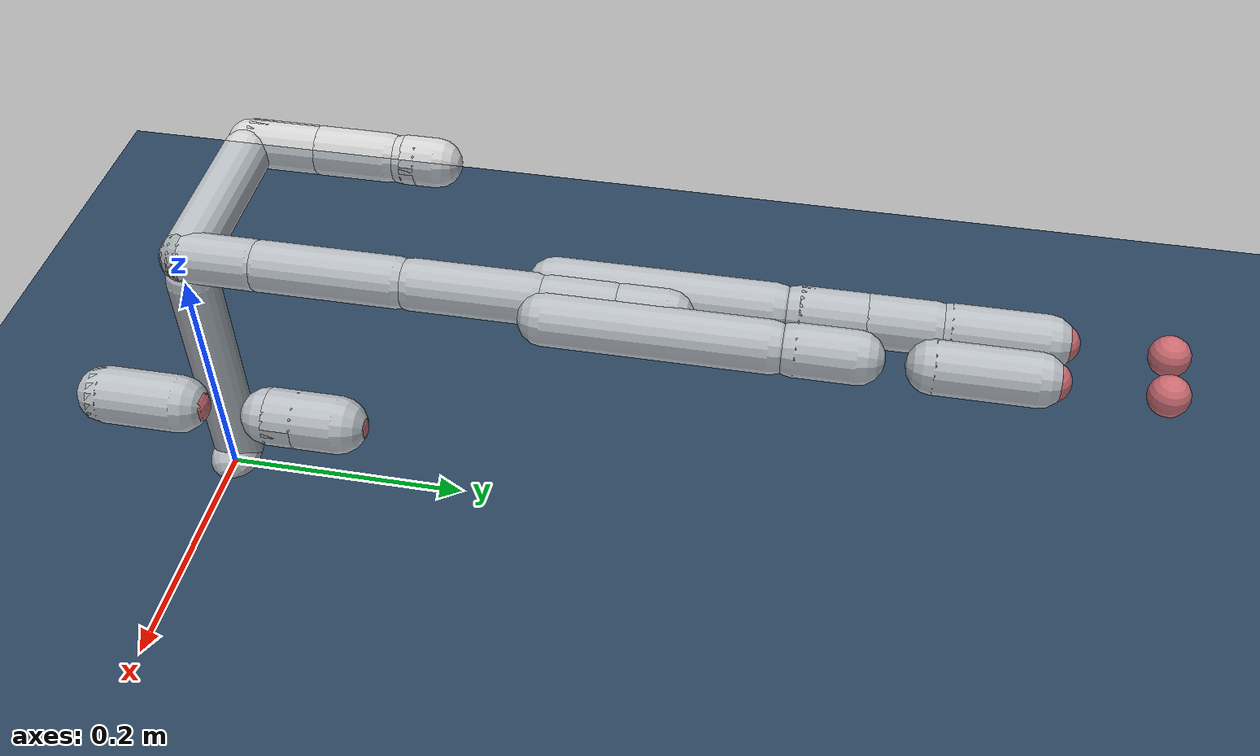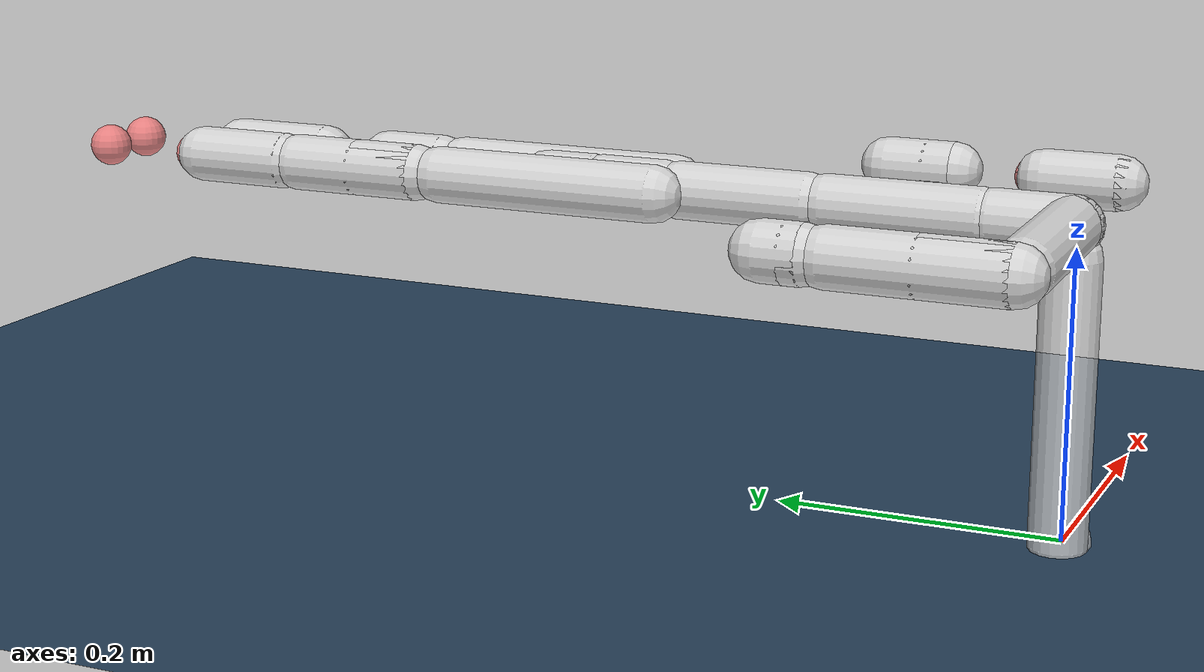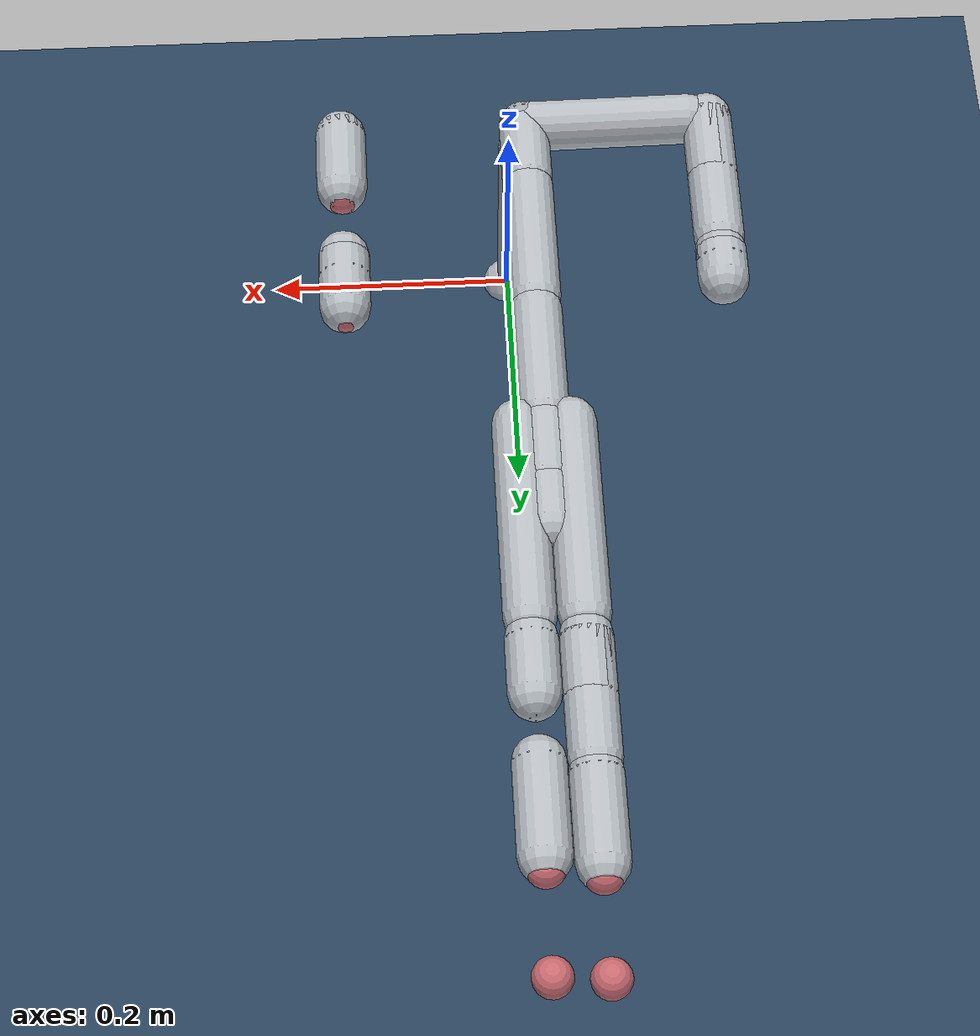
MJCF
<?xml version="1.0" ?>
<mujoco>
  <compiler angle="radian" autolimits="true"/>
  <option gravity="0 0 -9.81" timestep="0.01"/>
  <visual>
    <headlight diffuse="0.6 0.6 0.6" ambient="0.3 0.3 0.3" specular="0 0 0"/>
  </visual>
  <asset>
    <texture name="grid" type="2d" builtin="checker" width="512" height="512" rgb1="0.1 0.2 0.3" rgb2="0.2 0.3 0.4"/>
    <material name="grid" texture="grid" texrepeat="1 1" texuniform="true" reflectance="0.2"/>
  </asset>
  <worldbody>
    <geom name="floor" type="plane" size="10 10 0.1" material="grid" pos="0 0 0"/>
    <light name="spotlight" directional="true" diffuse="0.8 0.8 0.8" specular="0.2 0.2 0.2" pos="0 -2 4" dir="0 1 -1"/>
    <body name="Armature_body">
      <geom type="capsule" size="0.02" fromto="0 0 0 -0.01046572308987379 0.0 0.0010204081772826612" rgba="0.9 0.9 0.9 0.8"/>
      <joint name="Armature" type="free"/>
      <body name="Root_body" pos="-0.011628581210970879 0.0 0.0011337868636474013">
        <geom type="capsule" size="0.02" fromto="0 0 0 -3.29440594803998e-09 0.0 0.19453947991132736" rgba="0.9 0.9 0.9 0.8"/>
        <joint name="Root" type="ball"/>
        <body name="Hip_body" pos="-3.6604510533777557e-09 0.0 0.21615497767925262">
          <geom type="sphere" size="0.02" rgba="0.8 0.8 0.8 0.8"/>
          <joint name="Hip" type="ball"/>
          <body name="Pelvis_body" pos="0.0 0.001 0.0">
            <geom type="capsule" size="0.02" fromto="0 0 0 -0.13261746615171432 -0.0021376656834036114 3.5958933494839587e-06" rgba="0.9 0.9 0.9 0.8"/>
            <joint name="Pelvis" type="ball"/>
            <body name="L_Thigh_body" pos="-0.14735274016857147 -0.002375184092670679 3.995437054982176e-06">
              <geom type="capsule" size="0.02" fromto="0 0 0 -1.8044665921479464e-05 0.11752658039331436 -5.7976007610704984e-06" rgba="0.9 0.9 0.9 0.8"/>
              <joint name="L_Thigh" type="ball"/>
              <body name="L_Calf_body" pos="-2.004962880164385e-05 0.13058508932590485 -6.441778623411665e-06">
                <geom type="capsule" size="0.02" fromto="0 0 0 -1.1194031685590744e-06 0.02749726586043835 6.605425505767926e-06" rgba="0.9 0.9 0.9 0.8"/>
                <joint name="L_Calf" type="ball"/>
                <body name="L_Foot_body" pos="-1.2437812983989716e-06 0.030552517622709274 7.339361673075473e-06">
                  <geom type="sphere" size="0.015" rgba="1 0.5 0.5 0.8"/>
                  <joint name="L_Foot" type="ball"/>
                </body>
                <body name="L_CalfTwist01_body" pos="6.984919309616089e-09 -1.7860904335975647e-05 -4.069928394301314e-09">
                  <geom type="capsule" size="0.02" fromto="0 0 0 1.802109181880951e-08 0.011473905108869076 7.559863135497836e-09" rgba="0.9 0.9 0.9 0.8"/>
                  <joint name="L_CalfTwist01" type="ball"/>
                  <body name="L_CalfTwist02_body" pos="2.0023435354232788e-08 0.012748783454298973 8.399847928330928e-09">
                    <geom type="sphere" size="0.015" rgba="1 0.5 0.5 0.8"/>
                    <joint name="L_CalfTwist02" type="ball"/>
                  </body>
                </body>
              </body>
              <body name="L_ThighTwist01_body" pos="1.2863893061876297e-08 -6.528850644826889e-05 -3.4240770219184924e-09">
                <geom type="capsule" size="0.02" fromto="0 0 0 -3.9080623537302016e-08 0.05881209969520569 2.6671401087696725e-09" rgba="0.9 0.9 0.9 0.8"/>
                <joint name="L_ThighTwist01" type="ball"/>
                <body name="L_ThighTwist02_body" pos="-4.3422915041446686e-08 0.06534677743911743 2.9634890097440802e-09">
                  <geom type="sphere" size="0.015" rgba="1 0.5 0.5 0.8"/>
                  <joint name="L_ThighTwist02" type="ball"/>
                </body>
              </body>
            </body>
            <body name="R_Thigh_body" pos="0.14735862612724304 0.002133676316589117 3.0632079869974405e-05">
              <geom type="capsule" size="0.02" fromto="0 0 0 2.514570951461792e-08 -5.317353643476963e-05 1.502141770970411e-08" rgba="0.9 0.9 0.9 0.8"/>
              <joint name="R_Thigh" type="ball"/>
              <body name="R_ThighTwist01_body" pos="2.7939677238464355e-08 -5.9081707149744034e-05 1.6690464121893456e-08">
                <geom type="capsule" size="0.02" fromto="0 0 0 -2.5983899831771853e-08 0.053145956620573996 4.527931629638715e-09" rgba="0.9 0.9 0.9 0.8"/>
                <joint name="R_ThighTwist01" type="ball"/>
                <body name="R_ThighTwist02_body" pos="-2.8870999813079834e-08 0.059051062911748886 5.031035144043017e-09">
                  <geom type="sphere" size="0.015" rgba="1 0.5 0.5 0.8"/>
                  <joint name="R_ThighTwist02" type="ball"/>
                </body>
              </body>
              <body name="R_Calf_body" pos="2.7348054572939873e-05 0.11801790446043015 3.1702700653113425e-05">
                <geom type="capsule" size="0.02" fromto="0 0 0 -2.295803278684616e-06 0.048499032855033875 1.1021376758435509e-05" rgba="0.9 0.9 0.9 0.8"/>
                <joint name="R_Calf" type="ball"/>
                <body name="R_Foot_body" pos="-2.5508925318717957e-06 0.05388781428337097 1.2245974176039454e-05">
                  <geom type="sphere" size="0.015" rgba="1 0.5 0.5 0.8"/>
                  <joint name="R_Foot" type="ball"/>
                </body>
                <body name="R_CalfTwist01_body" pos="2.514570951461792e-08 -3.1439587473869324e-05 -2.511831098672701e-08">
                  <geom type="capsule" size="0.02" fromto="0 0 0 -8.381903171539307e-10 0.020234363526105883 5.040237027742478e-09" rgba="0.9 0.9 0.9 0.8"/>
                  <joint name="R_CalfTwist01" type="ball"/>
                  <body name="R_CalfTwist02_body" pos="-9.313225746154785e-10 0.022482626140117645 5.600263364158309e-09">
                    <geom type="sphere" size="0.015" rgba="1 0.5 0.5 0.8"/>
                    <joint name="R_CalfTwist02" type="ball"/>
                  </body>
                </body>
              </body>
            </body>
          </body>
          <body name="Waist_body" pos="2.9730552341789007e-05 4.7577934310538694e-05 1.9641185645014048e-05">
            <geom type="capsule" size="0.02" fromto="0 0 0 4.1009116102941337e-10 0.053612134605646136 3.616591426336413e-09" rgba="0.9 0.9 0.9 0.8"/>
            <joint name="Waist" type="ball"/>
            <body name="Spine01_body" pos="4.5565684558823705e-10 0.059569038450717926 4.01843491815157e-09">
              <geom type="capsule" size="0.02" fromto="0 0 0 2.83331758055283e-10 0.10710367038846016 -8.343056245863068e-11" rgba="0.9 0.9 0.9 0.8"/>
              <joint name="Spine01" type="ball"/>
              <body name="Spine02_body" pos="3.1481306450587e-10 0.11900407820940018 -9.270062495403408e-11">
                <geom type="capsule" size="0.02" fromto="0 0 0 -4.3587533582467586e-10 0.09368188977241516 3.832924977409391e-10" rgba="0.9 0.9 0.9 0.8"/>
                <joint name="Spine02" type="ball"/>
                <body name="NeckTwist01_body" pos="-4.843059286940843e-10 0.10409098863601685 4.258805530454879e-10">
                  <geom type="capsule" size="0.02" fromto="0 0 0 -7.031303539406508e-10 0.04820588752627373 5.9584357448017045e-09" rgba="0.9 0.9 0.9 0.8"/>
                  <joint name="NeckTwist01" type="ball"/>
                  <body name="NeckTwist02_body" pos="-7.812559488229454e-10 0.05356209725141525 6.620484160890783e-09">
                    <geom type="capsule" size="0.02" fromto="0 0 0 -9.830728231463582e-10 0.03489932790398598 -8.268387974297297e-10" rgba="0.9 0.9 0.9 0.8"/>
                    <joint name="NeckTwist02" type="ball"/>
                    <body name="Head_body" pos="-1.0923031368292868e-09 0.038777031004428864 -9.18709774921922e-10">
                      <geom type="sphere" size="0.015" rgba="1 0.5 0.5 0.8"/>
                      <joint name="Head" type="ball"/>
                    </body>
                  </body>
                </body>
                <body name="L_Clavicle_body" pos="-0.019997674971818924 0.10373256355524063 -9.875340545306699e-10">
                  <geom type="capsule" size="0.02" fromto="0 0 0 2.745414949458791e-05 0.16416012346744538 7.584613513245132e-07" rgba="0.9 0.9 0.9 0.8"/>
                  <joint name="L_Clavicle" type="ball"/>
                  <body name="L_Upperarm_body" pos="3.050461054954212e-05 0.18240013718605042 8.427348348050145e-07">
                    <geom type="capsule" size="0.02" fromto="0 0 0 -4.837203523493372e-05 0.09770893827080727 -4.129962762817741e-05" rgba="0.9 0.9 0.9 0.8"/>
                    <joint name="L_Upperarm" type="ball"/>
                    <body name="L_Forearm_body" pos="-5.374670581659302e-05 0.10856548696756363 -4.588847514241934e-05">
                      <geom type="capsule" size="0.02" fromto="0 0 0 -1.5427940525114537e-08 -6.926689529791474e-05 -2.8433959187168513e-09" rgba="0.9 0.9 0.9 0.8"/>
                      <joint name="L_Forearm" type="ball"/>
                      <body name="L_ForearmTwist01_body" pos="-1.714215613901615e-08 -7.696321699768305e-05 -3.159328798574279e-09">
                        <geom type="capsule" size="0.02" fromto="0 0 0 3.5518314689397815e-08 0.0692701868712902 -1.7100445859341564e-08" rgba="0.9 0.9 0.9 0.8"/>
                        <joint name="L_ForearmTwist01" type="ball"/>
                        <body name="L_ForearmTwist02_body" pos="3.94647940993309e-08 0.07696687430143356 -1.9000495399268402e-08">
                          <geom type="sphere" size="0.015" rgba="1 0.5 0.5 0.8"/>
                          <joint name="L_ForearmTwist02" type="ball"/>
                        </body>
                      </body>
                      <body name="L_Hand_body" pos="4.7264620661735535e-08 0.1538105607032776 -1.4747939758308348e-08">
                        <geom type="sphere" size="0.015" rgba="1 0.5 0.5 0.8"/>
                        <joint name="L_Hand" type="ball"/>
                      </body>
                    </body>
                    <body name="L_UpperarmTwist01_body" pos="3.721197572303936e-08 -5.427160795079544e-05 2.809574795037406e-10">
                      <geom type="capsule" size="0.02" fromto="0 0 0 -3.5893208405468613e-09 0.048841752111911774 6.053397783034597e-11" rgba="0.9 0.9 0.9 0.8"/>
                      <joint name="L_UpperarmTwist01" type="ball"/>
                      <body name="L_UpperarmTwist02_body" pos="-3.98813426727429e-09 0.05426861345767975 6.725997536705108e-11">
                        <geom type="sphere" size="0.015" rgba="1 0.5 0.5 0.8"/>
                        <joint name="L_UpperarmTwist02" type="ball"/>
                      </body>
                    </body>
                  </body>
                </body>
                <body name="R_Clavicle_body" pos="0.019997669383883476 0.1043422594666481 4.632994876629937e-09">
                  <geom type="capsule" size="0.02" fromto="0 0 0 -2.652493531059008e-05 0.1646248698234558 -2.583131481515011e-06" rgba="0.9 0.9 0.9 0.8"/>
                  <joint name="R_Clavicle" type="ball"/>
                  <body name="R_Upperarm_body" pos="-2.947215034510009e-05 0.182916522026062 -2.8701460905722342e-06">
                    <geom type="capsule" size="0.02" fromto="0 0 0 2.252636477351189e-09 -4.386153013911098e-05 1.2189929066153126e-10" rgba="0.9 0.9 0.9 0.8"/>
                    <joint name="R_Upperarm" type="ball"/>
                    <body name="R_UpperarmTwist01_body" pos="2.5029294192790985e-09 -4.873503348790109e-05 1.354436562905903e-10">
                      <geom type="capsule" size="0.02" fromto="0 0 0 -1.0472795111127198e-07 0.04382737912237644 -6.518331474580918e-09" rgba="0.9 0.9 0.9 0.8"/>
                      <joint name="R_UpperarmTwist01" type="ball"/>
                      <body name="R_UpperarmTwist02_body" pos="-1.1636439012363553e-07 0.0486970879137516 -7.242590527312132e-09">
                        <geom type="sphere" size="0.015" rgba="1 0.5 0.5 0.8"/>
                        <joint name="R_UpperarmTwist02" type="ball"/>
                      </body>
                    </body>
                    <body name="R_Forearm_body" pos="5.541671998798847e-05 0.09742680191993713 -7.703141454840079e-05">
                      <geom type="capsule" size="0.02" fromto="0 0 0 1.2782402336597442e-08 -7.243473082780838e-05 -1.3311975521901331e-08" rgba="0.9 0.9 0.9 0.8"/>
                      <joint name="R_Forearm" type="ball"/>
                      <body name="R_ForearmTwist01_body" pos="1.4202669262886047e-08 -8.048303425312042e-05 -1.4791083913223702e-08">
                        <geom type="capsule" size="0.02" fromto="0 0 0 -3.5937409847974776e-08 0.07247826978564263 3.0180811450009064e-08" rgba="0.9 0.9 0.9 0.8"/>
                        <joint name="R_ForearmTwist01" type="ball"/>
                        <body name="R_ForearmTwist02_body" pos="-3.993045538663864e-08 0.08053141087293625 3.353423494445451e-08">
                          <geom type="sphere" size="0.015" rgba="1 0.5 0.5 0.8"/>
                          <joint name="R_ForearmTwist02" type="ball"/>
                        </body>
                      </body>
                      <body name="R_Hand_body" pos="7.35744833946228e-08 0.16093403100967407 -5.899210009374656e-10">
                        <geom type="sphere" size="0.015" rgba="1 0.5 0.5 0.8"/>
                        <joint name="R_Hand" type="ball"/>
                      </body>
                    </body>
                  </body>
                </body>
              </body>
            </body>
          </body>
        </body>
      </body>
    </body>
  </worldbody>
  <actuator>
    <motor name="Armature_motor" joint="Armature" gear="250" ctrllimited="true" ctrlrange="-1 1"/>
    <motor name="Head_motor" joint="Head" gear="100" ctrllimited="true" ctrlrange="-1 1"/>
    <motor name="Hip_motor" joint="Hip" gear="100" ctrllimited="true" ctrlrange="-1 1"/>
    <motor name="L_Calf_motor" joint="L_Calf" gear="100" ctrllimited="true" ctrlrange="-1 1"/>
    <motor name="L_CalfTwist01_motor" joint="L_CalfTwist01" gear="100" ctrllimited="true" ctrlrange="-1 1"/>
    <motor name="L_CalfTwist02_motor" joint="L_CalfTwist02" gear="100" ctrllimited="true" ctrlrange="-1 1"/>
    <motor name="L_Clavicle_motor" joint="L_Clavicle" gear="100" ctrllimited="true" ctrlrange="-1 1"/>
    <motor name="L_Foot_motor" joint="L_Foot" gear="100" ctrllimited="true" ctrlrange="-1 1"/>
    <motor name="L_Forearm_motor" joint="L_Forearm" gear="100" ctrllimited="true" ctrlrange="-1 1"/>
    <motor name="L_ForearmTwist01_motor" joint="L_ForearmTwist01" gear="100" ctrllimited="true" ctrlrange="-1 1"/>
    <motor name="L_ForearmTwist02_motor" joint="L_ForearmTwist02" gear="100" ctrllimited="true" ctrlrange="-1 1"/>
    <motor name="L_Hand_motor" joint="L_Hand" gear="100" ctrllimited="true" ctrlrange="-1 1"/>
    <motor name="L_Thigh_motor" joint="L_Thigh" gear="100" ctrllimited="true" ctrlrange="-1 1"/>
    <motor name="L_ThighTwist01_motor" joint="L_ThighTwist01" gear="100" ctrllimited="true" ctrlrange="-1 1"/>
    <motor name="L_ThighTwist02_motor" joint="L_ThighTwist02" gear="100" ctrllimited="true" ctrlrange="-1 1"/>
    <motor name="L_Upperarm_motor" joint="L_Upperarm" gear="100" ctrllimited="true" ctrlrange="-1 1"/>
    <motor name="L_UpperarmTwist01_motor" joint="L_UpperarmTwist01" gear="100" ctrllimited="true" ctrlrange="-1 1"/>
    <motor name="L_UpperarmTwist02_motor" joint="L_UpperarmTwist02" gear="100" ctrllimited="true" ctrlrange="-1 1"/>
    <motor name="NeckTwist01_motor" joint="NeckTwist01" gear="100" ctrllimited="true" ctrlrange="-1 1"/>
    <motor name="NeckTwist02_motor" joint="NeckTwist02" gear="100" ctrllimited="true" ctrlrange="-1 1"/>
    <motor name="Pelvis_motor" joint="Pelvis" gear="100" ctrllimited="true" ctrlrange="-1 1"/>
    <motor name="R_Calf_motor" joint="R_Calf" gear="100" ctrllimited="true" ctrlrange="-1 1"/>
    <motor name="R_CalfTwist01_motor" joint="R_CalfTwist01" gear="100" ctrllimited="true" ctrlrange="-1 1"/>
    <motor name="R_CalfTwist02_motor" joint="R_CalfTwist02" gear="100" ctrllimited="true" ctrlrange="-1 1"/>
    <motor name="R_Clavicle_motor" joint="R_Clavicle" gear="100" ctrllimited="true" ctrlrange="-1 1"/>
    <motor name="R_Foot_motor" joint="R_Foot" gear="100" ctrllimited="true" ctrlrange="-1 1"/>
    <motor name="R_Forearm_motor" joint="R_Forearm" gear="100" ctrllimited="true" ctrlrange="-1 1"/>
    <motor name="R_ForearmTwist01_motor" joint="R_ForearmTwist01" gear="100" ctrllimited="true" ctrlrange="-1 1"/>
    <motor name="R_ForearmTwist02_motor" joint="R_ForearmTwist02" gear="100" ctrllimited="true" ctrlrange="-1 1"/>
    <motor name="R_Hand_motor" joint="R_Hand" gear="100" ctrllimited="true" ctrlrange="-1 1"/>
    <motor name="R_Thigh_motor" joint="R_Thigh" gear="100" ctrllimited="true" ctrlrange="-1 1"/>
    <motor name="R_ThighTwist01_motor" joint="R_ThighTwist01" gear="100" ctrllimited="true" ctrlrange="-1 1"/>
    <motor name="R_ThighTwist02_motor" joint="R_ThighTwist02" gear="100" ctrllimited="true" ctrlrange="-1 1"/>
    <motor name="R_Upperarm_motor" joint="R_Upperarm" gear="100" ctrllimited="true" ctrlrange="-1 1"/>
    <motor name="R_UpperarmTwist01_motor" joint="R_UpperarmTwist01" gear="100" ctrllimited="true" ctrlrange="-1 1"/>
    <motor name="R_UpperarmTwist02_motor" joint="R_UpperarmTwist02" gear="100" ctrllimited="true" ctrlrange="-1 1"/>
    <motor name="Root_motor" joint="Root" gear="100" ctrllimited="true" ctrlrange="-1 1"/>
    <motor name="Spine01_motor" joint="Spine01" gear="100" ctrllimited="true" ctrlrange="-1 1"/>
    <motor name="Spine02_motor" joint="Spine02" gear="100" ctrllimited="true" ctrlrange="-1 1"/>
    <motor name="Waist_motor" joint="Waist" gear="100" ctrllimited="true" ctrlrange="-1 1"/>
  </actuator>
</mujoco>
